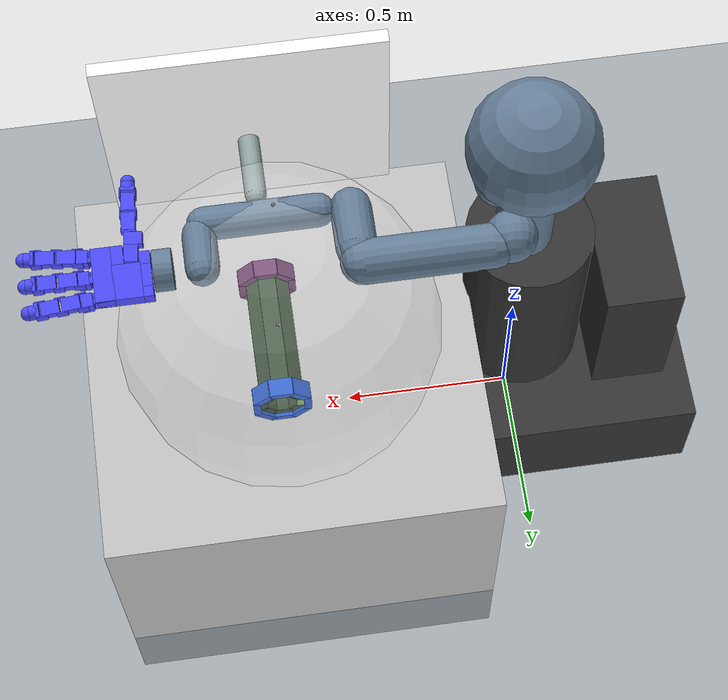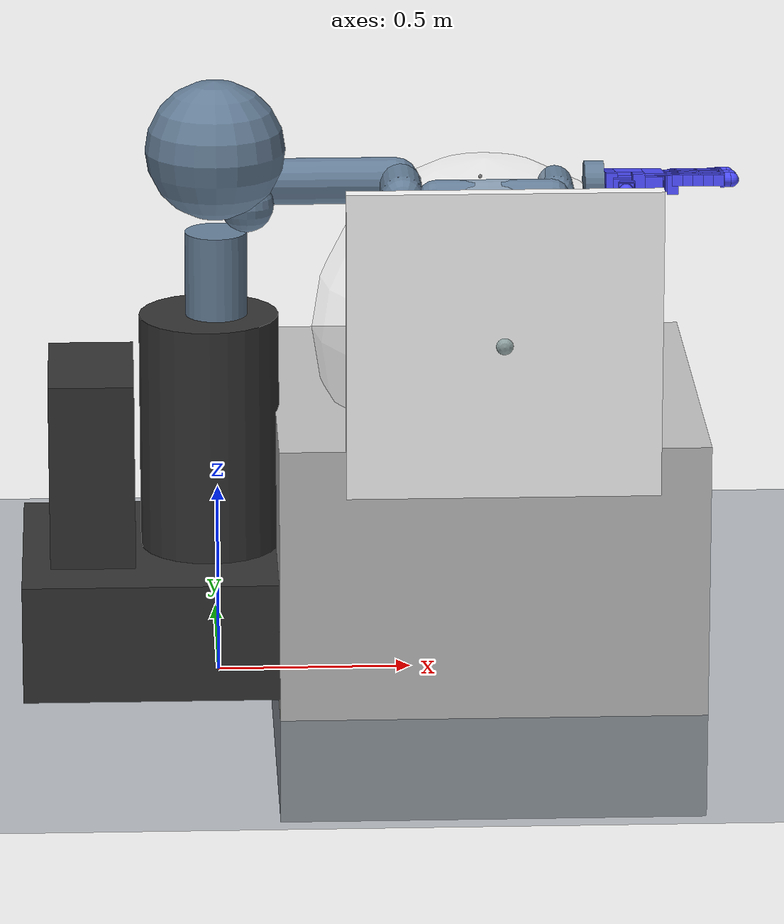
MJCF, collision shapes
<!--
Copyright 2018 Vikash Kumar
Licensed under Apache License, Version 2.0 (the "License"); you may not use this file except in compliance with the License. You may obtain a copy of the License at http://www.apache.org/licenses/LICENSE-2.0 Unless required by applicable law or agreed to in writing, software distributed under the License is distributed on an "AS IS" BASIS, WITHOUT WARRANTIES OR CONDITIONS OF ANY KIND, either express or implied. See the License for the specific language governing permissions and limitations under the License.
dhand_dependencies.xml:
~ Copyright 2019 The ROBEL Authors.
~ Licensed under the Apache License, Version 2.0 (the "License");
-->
<mujoco model='sawyer-DHand-v2.0'>
    <compiler meshdir="../../../sawyer_sim/" texturedir="../../../dsuite-scenes/scenes/"/>

    <include file="../../../sawyer_sim/assets/basic_scene.xml"/>

    <!-- Sawyer -->
    <include file="../../../sawyer_sim/assets/sawyer_dependencies.xml"/>
    <include file="../../../sawyer_sim/assets/sawyer_mocap_ee_act.xml"/>

    <!-- D'Hand -->
    <include file="../../../robel-scenes_dev/dhand/assets/dhand_dependencies.xml"/>

    <size njmax='5000' nconmax='5000'/>

    <include file='./dependencies.xml' />

    <worldbody>
        <!-- ROBOT -->
        <include file="../../base_env/assets/sawyer_dHand_chain.xml"/> <!--dHand is imported in here-->

        <!-- Sawyer physical boundary -->

        <!-- TABLE -->
        <body name="table" pos="0.7 0.15 0.72">
          <!-- Arena platform -->
          <geom type="box" size="0.55 0.55 0.5" pos="0 0 -0.5" rgba=".75 .75 .75 1"/>

          <!-- Spherical bound of object movement, due to the string attached (see below) -->
          <site name="workspace" type="sphere" size="0.45" pos="0 0 0.165" rgba="1 1 1 0.05"/>

          <!-- Axes markers -->
        </body>

        <body name="phase_indicator" pos="0.72 0.6 0.715" euler="0 0 0">
          <geom name="pi0" type="box" pos="0.15 0 0" size="0.05 0.05 0.01" contype="0" conaffinity="0" group='1' rgba="0 0 1 0"/>
          <geom name="pi1" type="box" pos="0.05 0 0" size="0.05 0.05 0.01" contype="0" conaffinity="0" group='1' rgba="0 0 1 0"/>
          <geom name="pi2" type="box" pos="-0.05 0 0" size="0.05 0.05 0.01" contype="0" conaffinity="0" group='1' rgba="0 0 1 0"/>
          <geom name="pi3" type="box" pos="-0.15 0 0" size="0.05 0.05 0.01" contype="0" conaffinity="0" group='1' rgba="0 0 1 0"/>
        </body>

        <!-- Pipe -->
        <body name="object" pos="0.72 0.15 0.8" euler="0 0 0">
          <include file="./pipe.xml"/>
          <freejoint name="r1"/>
        </body>

        <!-- Wall + Goal -->
        <body name="wall" pos="0.72 -0.4 1.">
          <geom type="box" pos="0.0 0 0.0" size="0.4 0.02 0.4" rgba='1 1 1 1' group='1' contype='1' conaffinity='1' />
          <geom type="capsule" pos="0. 0.1 0.0" euler="1.57 0 0" size="0.03 0.1" rgba='0.58 0.65 0.65 1' group='1' contype='1' conaffinity='1' />
          <site name="peg_center" type="sphere" size="0.1" pos="0 0.1 0" rgba="1 1 1 0"/>
        </body>

        <!-- Rod Target -->
        <body name="target" pos="0.72 0.15 0.8" euler="0 0 0">
          <include file="./pipe_visual.xml" />
        </body>

   </worldbody>

    <tendon>
      <spatial limited="true" range="0 0.45" width="0.005">
        <site site="workspace"/>
        <site site="rod_center"/>
      </spatial>
    </tendon>

</mujoco>

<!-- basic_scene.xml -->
<mujocoinclude>
    <asset>
        <texture name="texplane" type="2d" builtin="checker" rgb1=".2 .3 .4" rgb2=".1 0.15 0.2"
                width="512" height="512"/>
        <material name="MatGnd" reflectance="0.5" texture="texplane" texrepeat="1 1" texuniform="true"/>
    </asset>

    <worldbody>
        <light directional="false" diffuse=".8 .8 .8" specular="0.3 0.3 0.3" pos="1 -1 3" dir="-1 1 -3"/>
        <geom name="ground" pos="0 0 0" size="5 5 10" material="MatGnd" type="plane" contype="1" conaffinity="1"/>
    </worldbody>

</mujocoinclude>

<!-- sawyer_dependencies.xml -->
<mujoco>
    <compiler angle="radian"/>
    <option iterations="50" integrator="Euler" timestep="0.002" cone="elliptic" />

    <asset>
        <mesh name="pedestal" file="../sawyer_sim/meshes/sawyer/pedestal.stl" />
        <mesh name="base" file="../sawyer_sim/meshes/sawyer/base.stl" />
        <mesh name="l0" file="../sawyer_sim/meshes/sawyer/l0.stl" />
        <mesh name="head" file="../sawyer_sim/meshes/sawyer/head.stl" />
        <mesh name="l1" file="../sawyer_sim/meshes/sawyer/l1.stl" />
        <mesh name="l2" file="../sawyer_sim/meshes/sawyer/l2.stl" />
        <mesh name="l3" file="../sawyer_sim/meshes/sawyer/l3.stl" />
        <mesh name="l4" file="../sawyer_sim/meshes/sawyer/l4.stl" />
        <mesh name="l5" file="../sawyer_sim/meshes/sawyer/l5.stl" />
        <mesh name="l6" file="../sawyer_sim/meshes/sawyer/l6.stl" />
    </asset>

    <contact>
        <exclude body1="right_arm_base_link" body2="right_l0"/>
    </contact>

    <default>
        <default class='sawyer'>
            <joint limited="true" damping="10" stiffness="0" armature=".1" user="0"/>
            <geom solref="0.008 1" solimp="0.95 0.95 0.01" margin="0.001" user="0" rgba="0.2 0.2 0.2 1" group="3"/>
            <motor ctrllimited="true" ctrlrange="-100 100"/>
            <position ctrllimited="true" forcelimited="true"/>

            <default class='sawyer_col'>
                <geom rgba=".4 .5 .6 1" group="4"/>
            </default>
            <default class='sawyer_viz'>
                <geom type="mesh" contype="0" conaffinity="0" group="1" rgba="0.5 0.1 0.1 1"/>
            </default>

            <default class='sawyer_gripper'>
                <joint damping="100" armature='5'/>
                <geom friction="1 0.5 0.001" rgba=".7 .6 .55 1" contype="2" conaffinity="2" condim="6" group="1"/>
                <position kp="500" forcerange="-70 70"/>
            </default>
        </default>
    </default>

</mujoco>

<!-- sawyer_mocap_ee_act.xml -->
<mujocoinclude>
    <equality>
        <weld body1="mocap" body2="right_ee_attchment" solref="0.01 1" solimp=".25 .25 0.001"/>
    </equality>

    <worldbody>
        <body mocap="true" name="mocap" pos="1 .15 1.25">
            <geom type="mesh" contype="0" conaffinity="0" group="1" rgba="1.0 0.5 0.5 .1" mesh="l6" euler="2.95 1.57 0" pos="-0.01 .01 .017"/>
        </body>
    </worldbody>

</mujocoinclude>

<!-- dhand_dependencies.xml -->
<mujocoinclude>
  <compiler angle="radian" inertiafromgeom="auto" inertiagrouprange="4 5"/>
  <asset>
    <material name="visual_black" rgba=".2 .2 .2 1" shininess="0.8" specular=".5"/>
    <material name="visual_blue" rgba="0.1 0.4 0.9 1" shininess="0.5" specular=".5"/>
    <material name="visual_white" rgba="1 1 1 1" shininess="0.2" specular=".2"/>
    <material name="visual_chrome" rgba=".5 .5 .5 1" shininess="1" specular=".5" reflectance="1"/>
    <material name="collision_blue" rgba="0.3 0.3 1.0 0.5" shininess="0" specular="0"/>
  </asset>
  <default>
    <default class="dHand">
      <joint armature="0.001" damping="1" limited="true"/>
      <position ctrllimited="true" ctrlrange="0 1.57"/>
      <geom conaffinity="0" contype="0" group="1" material="visual_black" type="mesh"/>
      <site group="3"/>
      <default class="phys_metal">
        <geom conaffinity="1" contype="1" condim="4" margin="0.001" group="4" rgba="0.3 0.3 1.0 0.5"/>
      </default>
      <default class="ADB">
        <joint range="-.3 .3"/>
        <position kp="5" ctrlrange="-.3 .3"/>
      </default>
      <default class="MCP">
        <joint range="-.2 1.57"/>
        <position kp="5" ctrlrange="-.2 1.57"/>
      </default>
      <default class="PIP">
        <joint range="-.2 1.57"/>
        <position kp="5" ctrlrange="-.2 1.57"/>
      </default>
      <default class="DIP">
        <joint range="-.2 1.57"/>
        <position kp="5" ctrlrange="-.2 1.57"/>
      </default>
      <default class="WR">
        <joint damping="100" frictionloss="1"/>
        <position kp="1600" ctrlrange="-.2 1.57"/>
      </default>
    </default>
  </default>
  <asset>
    <mesh file="../robel_sim/dhand/meshes/bracket1.stl" name="bracket1"/>
    <mesh file="../robel_sim/dhand/meshes/bracket2.stl" name="bracket2"/>
    <mesh file="../robel_sim/dhand/meshes/finger.stl" name="finger"/>
    <mesh file="../robel_sim/dhand/meshes/H-540.stl" name="H-540"/>
    <mesh file="../robel_sim/dhand/meshes/knuckle.stl" name="knuckle"/>
    <mesh file="../robel_sim/dhand/meshes/motor.stl" name="motor"/>
    <mesh file="../robel_sim/dhand/meshes/PalmInterior.stl" name="PalmInterior"/>
    <mesh file="../robel_sim/dhand/meshes/Palmplate.stl" name="Palmplate"/>
    <mesh file="../robel_sim/dhand/meshes/topPlate.stl" name="topPlate"/>
    <mesh file="../robel_sim/dhand/meshes/thumb_bracket.stl" name="thumb_bracket"/>
    <mesh file="../robel_sim/dhand/meshes/wristbracket1.stl" name="wristbracket1"/>
    <mesh file="../robel_sim/dhand/meshes/wristbracket2.stl" name="wristbracket2"/>
    <mesh file="../robel_sim/dhand/meshes/wristmount.stl" name="wristmount"/>
  </asset>
  <actuator>
    <position joint="FF_ADB" name="FF_ADB" class="ADB"/>
    <position joint="FF_MCP" name="FF_MCP" class="MCP"/>
    <position joint="FF_PIP" name="FF_PIP" class="PIP"/>
    <position joint="FF_DIP" name="FF_DIP" class="DIP"/>
    <position joint="MF_ADB" name="MF_ADB" class="ADB"/>
    <position joint="MF_MCP" name="MF_MCP" class="MCP"/>
    <position joint="MF_PIP" name="MF_PIP" class="PIP"/>
    <position joint="MF_DIP" name="MF_DIP" class="DIP"/>
    <position joint="PF_ADB" name="PF_ADB" class="ADB"/>
    <position joint="PF_MCP" name="PF_MCP" class="MCP"/>
    <position joint="PF_PIP" name="PF_PIP" class="PIP"/>
    <position joint="PF_DIP" name="PF_DIP" class="DIP"/>
    <position joint="TF_MCP" name="TF_MCP" class="MCP"/>
    <position joint="TF_ADB" name="TF_ADB" class="ADB" ctrlrange="-2.57 .57"/>
    <position joint="TF_PIP" name="TF_PIP" class="PIP"/>
    <position joint="TF_DIP" name="TF_DIP" class="DIP"/>
  </actuator>
</mujocoinclude>

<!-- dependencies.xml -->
<mujocoinclude>
  <option timestep="0.0025"/>
  <asset>
    <material name="station_metal_grey" specular="1" shininess="1" rgba="0.5 0.5 0.5 1.0"/>
    <material name="plastic_white" specular="0.3" shininess="0" rgba="1 1 1 1"/>
    <material name="plastic_grey" specular="0.3" shininess="0" rgba="0.5 0.5 0.5 1.0"/>
    <material name="plastic_black" specular="0.3" shininess="0" rgba="0.02 0.02 0.02 1.0"/>
    <material name="plastic_transparent" specular="0.3" shininess="0" rgba="1 1 1 0.4"/>

    <mesh
      name="dodecahedron"
      vertex="1 1 1  -1 1 1  -1 -1 1
             -1 -1 -1  1 -1 1  1 -1 -1
             1 1 -1  -1 1 -1  0 0.618 1.618
             0 -0.618 1.618  0 0.618 -1.618  0 -0.618 -1.618
             1.618 0 0.618  -1.618 0 -0.618  -1.618 0 0.618
             1.618 0 -00.618  0.618 1.618 0  -0.618 1.618 0
             0.618 -1.618 0  -0.618 -1.618 0"
      scale="0.042 0.042 0.042"/>
    <mesh name="dodecahedron_top_left_face_blue" vertex="0 0.618 1.618  0 -0.618 1.618  -1 1 1  -1 -1 1  -1.618 0 0.618  0 0 0" scale="0.042 0.042 0.042"/>
    <mesh name="dodecahedron_top_right_face_yellow" vertex="0 0.618 1.618  0 -0.618 1.618  1 1 1  1 -1 1  1.618 0 0.618  0 0 0" scale="0.042 0.042 0.042"/>
    <mesh name="dodecahedron_top_front_face_red" vertex="0 -0.618 1.618  1 -1 1  -1 -1 1  0.618 -1.618 0  -0.618 -1.618 0  0 0 0" scale="0.042 0.042 0.042"/>
    <mesh name="dodecahedron_top_back_face_green" vertex="0 0.618 1.618  1 1 1  -1 1 1  0.618 1.618 0  -0.618 1.618 0  0 0 0" scale="0.042 0.042 0.042"/>
    <mesh name="dodecahedron_middle_quad_1_magenta" vertex="1 1 1  0.618 1.618 0  1.618 0 -0.618  1 1 -1  1.618 0 0.618  0 0 0" scale="0.042 0.042 0.042"/>
    <mesh name="dodecahedron_middle_quad_2_orange" vertex="-1 1 1  -0.618 1.618 0  -1.618 0 -0.618  -1 1 -1  -1.618 0 0.618  0 0 0" scale="0.042 0.042 0.042"/>
    <mesh name="dodecahedron_middle_quad_3_purple" vertex="-1 -1 1  -0.618 -1.618 0  -1.618 0 -0.618  -1 -1 -1  -1.618 0 0.618  0 0 0" scale="0.042 0.042 0.042"/>
    <mesh name="dodecahedron_middle_quad_4_white" vertex="1 -1 1  0.618 -1.618 0  1.618 0 -0.618  1 -1 -1  1.618 0 0.618  0 0 0" scale="0.042 0.042 0.042"/>
    <mesh name="dodecahedron_bottom_front_bgreen" vertex="0.618 -1.618 0  -0.618 -1.618 0  0.618 -1.618 0  1 -1 -1  -1 -1 -1  0 -0.618 -1.618  0 0 0" scale="0.042 0.042 0.042"/>
    <mesh name="dodecahedron_bottom_back_black" vertex="0.618 1.618 0  -0.618 1.618 0  0.618 1.618 0  1 1 -1  -1 1 -1  0 0.618 -1.618  0 0 0" scale="0.042 0.042 0.042"/>
    <mesh name="dodecahedron_bottom_right_babyblue" vertex="1.618 0 -0.618  1 1 -1  1 -1 -1  0 -0.618 -1.618  0 0.618 -1.618  0 0 0" scale="0.042 0.042 0.042"/>
    <mesh name="dodecahedron_bottom_left_violet" vertex="-1.618 0 -0.618  -1 1 -1  -1 -1 -1  0 -0.618 -1.618  0 0.618 -1.618  0 0 0" scale="0.042 0.042 0.042"/>
  </asset>
  <default>
    <default class="station">
      <joint limited="true" damping=".1" armature="0.001"/>
      <geom contype="1" conaffinity="1" condim="4" group="2" margin="0.0005"/>
      <site group="2"/>
      <default class="station_viz">
        <geom contype="0" conaffinity="0" type="mesh"/>
        <default class="station_viz_metal_grey">
          <geom material="station_metal_grey"/>
        </default>
        <default class="station_viz_plastic_black">
          <geom material="plastic_black"/>
        </default>
        <default class="station_viz_plastic_grey">
          <geom material="plastic_grey"/>
        </default>
        <default class="station_viz_plastic_white">
          <geom material="plastic_white"/>
        </default>
        <default class="station_viz_plastic_transparent">
          <geom material="plastic_transparent"/>
        </default>
      </default>
      <default class="station_phy">
        <geom contype="1" conaffinity="1" group="4" type="mesh" rgba="0.0 0.0 1.0 .3"/>
        <site group="4"/>
        <default class="station_phy_metal">
          <geom material="station_metal_grey"/>
        </default>
        <default class="station_phy_plastic">
          <geom material="station_metal_grey" friction=".2 0.005 0.0001"/>
        </default>
      </default>
    </default>
  </default>
</mujocoinclude>

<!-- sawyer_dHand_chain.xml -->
<mujocoinclude>
    <camera pos="0 0 3.2" name="topview" />

    <body name="base" pos="0 0 .95" childclass='sawyer'>
        <site name="basesite" pos="0 0 0" size="0.01" />
        <inertial pos="0 0 0" mass="0" diaginertia="0 0 0" />
        <body name="controller_box" pos="0 0 0">
            <inertial pos="-0.325 0 -0.38" mass="46.64" diaginertia="1.71363 1.27988 0.809981" />
            <geom size="0.11 0.2 0.265" pos="-0.325 0 -0.38" type="box" />
        </body>
        <body name="pedestal_feet" pos="0 0 0">
            <inertial pos="-0.1225 0 -0.758" mass="167.09" diaginertia="8.16095 9.59375 15.0785" />
            <geom size="0.385 0.35 0.155" pos="-0.1225 0 -0.758" type="box"  contype="0" conaffinity="0" />
        </body>
        <body name="torso" pos="0 0 0">
            <inertial pos="0 0 0" mass="0.0001" diaginertia="1e-08 1e-08 1e-08" />
            <geom size="0.05 0.05 0.05" type="box" contype="0" conaffinity="0" group="1"  />
        </body>
        <body name="pedestal" pos="0 0 0">
            <inertial pos="0 0 0" quat="0.659267 -0.259505 -0.260945 0.655692" mass="60.864" diaginertia="6.0869 5.81635 4.20915" />
            <geom pos="0.26 0.345 -0.91488" quat="0.5 0.5 -0.5 -0.5" type="mesh" contype="0" conaffinity="0" group="1"  mesh="pedestal" />
            <geom size="0.18 0.31" pos="-0.02 0 -0.29" type="cylinder" rgba="0.2 0.2 0.2 0" />
        </body>
        <body name="right_arm_base_link" pos="0 0 0">
            <inertial pos="-0.0006241 -2.8025e-05 0.065404" quat="-0.209285 0.674441 0.227335 0.670558" mass="2.0687" diaginertia="0.00740351 0.00681776 0.00672942" />
            <geom name='right_arm_base_link0' class="sawyer_viz" mesh="base" />
            <geom name='right_arm_base_link1' size="0.08 0.12" pos="0 0 0.12" type="cylinder" class="sawyer_col" />
            <body name="right_l0" pos="0 0 0.08">
                <inertial pos="0.024366 0.010969 0.14363" quat="0.894823 0.00899958 -0.170275 0.412573" mass="5.3213" diaginertia="0.0651588 0.0510944 0.0186218" />
                <joint name="right_j0" pos="0 0 0" axis="0 0 1" range="-3.0503 3.0503" damping="50"/>
                <geom name='right_l0_g0' class="sawyer_viz" mesh="l0" />
                <geom name='right_l0_g1' size="0.07" pos="0.08 0 0.23" class="sawyer_col" />
                <body name="head" pos="0 0 0.2965">
                    <inertial pos="0.0053207 -2.6549e-05 0.1021" quat="0.999993 7.08405e-05 -0.00359857 -0.000626247" mass="1.5795" diaginertia="0.0118334 0.00827089 0.00496574" />
                    <geom name='head_g0' class="sawyer_viz" mesh="head" />
                    <geom name='head_g1' size="0.18" pos="0 0 0.08" class="sawyer_col" />
                    <body name="screen" pos="0.03 0 0.105" quat="0.5 0.5 0.5 0.5">
                        <geom size="0.12 0.07 0.001" type="box" group="1"/>
                    </body>
                    <site name="head_camera" size="0.01" pos="0.0228027 0 0.216572" quat="0.342813 -0.618449 0.618449 -0.342813"/>
                </body>
                <site name="right_torso_itb" pos="-0.055 0 0.22" quat="0.707107 0 -0.707107 0"/>
                <body name="right_l1" pos="0.081 0.05 0.237" quat="0.5 -0.5 0.5 0.5">
                    <inertial pos="-0.0030849 -0.026811 0.092521" quat="0.424888 0.891987 0.132364 -0.0794296" mass="4.505" diaginertia="0.0224339 0.0221624 0.0097097" />
                    <joint name="right_j1" pos="0 0 0" axis="0 0 1" range="-3.8 1.25" damping="50"/>
                    <geom class="sawyer_viz" mesh="l1" />
                    <geom size="0.07" pos="0 0 0.1225" class="sawyer_col" />
                    <body name="right_l2" pos="0 -0.14 0.1425" quat="0.707107 0.707107 0 0">
                        <inertial pos="-0.00016044 -0.014967 0.13582" quat="0.707831 -0.0524761 0.0516007 0.702537" mass="1.745" diaginertia="0.0257928 0.025506 0.00292515" />
                        <joint name="right_j2" pos="0 0 0" axis="0 0 1" range="-3.0426 3.0426" damping="25"/>
                        <geom class="sawyer_viz" mesh="l2" />
                        <geom size="0.06 0.17" pos="0 0 0.08" type="capsule" class="sawyer_col" />
                        <body name="right_l3" pos="0 -0.042 0.26" quat="0.707107 -0.707107 0 0">
                            <site name="armsite" pos="0 0 0" size="0.01" />
                            <inertial pos="-0.0048135 -0.0281 -0.084154" quat="0.902999 0.385391 -0.0880901 0.168247" mass="2.5097" diaginertia="0.0102404 0.0096997 0.00369622" />
                            <joint name="right_j3" pos="0 0 0" axis="0 0 1" range="-3.0439 3.0439" damping="25"/>
                            <geom class="sawyer_viz" mesh="l3" />
                            <geom type="capsule" size="0.055 0.06" pos="0 0 -0.06" class="sawyer_col" />
                            <body name="right_l4" pos="0 -0.125 -0.1265" quat="0.707107 0.707107 0 0">
                                <joint name="right_j4" pos="0 0 0" axis="0 0 1" range="-2.9761 2.9761" />
                                <geom class="sawyer_viz" mesh="l4" />
                                <geom size="0.045 0.15" pos="0 0 0.11" type="capsule" class="sawyer_col" />
                                <site name="right_arm_itb" pos="-0.055 0 0.075" quat="0.707107 0 -0.707107 0"/>
                                <body name="right_l5" pos="0 0.031 0.275" quat="0.707107 -0.707107 0 0">
                                    <joint name="right_j5" pos="0 0 0" axis="0 0 1" range="-2.9761 2.9761"/>
                                    <geom class="sawyer_viz" mesh="l5" />
                                    <geom type="capsule" size="0.045 0.05" pos="0 0 0.05" class="sawyer_col" />
                                    <site name="right_hand_camera" pos="0.039552 -0.033 0.0695" quat="0.707107 0 0.707107 0"/>
                                    <site name="right_wrist" pos="0 0 0.10541" quat="0.707107 0.707107 0 0"/>
                                    <body name="right_l6" pos="0 -0.11 0.1053" quat="0.0616248 0.06163 -0.704416 0.704416">
                                        <joint name="right_j6" pos="0 0 0" axis="0 0 1" range="-4.7124 4.7124"/>
                                        <geom class="sawyer_viz" mesh="l6"/>
                                        <geom size="0.055 0.025" pos="0 0.015 -0.01" type="cylinder" class="sawyer_col" />
                                        <body name="right_ee_attchment" pos="0 0 0.0245" quat="0.707107 0 0 0.707107" childclass="sawyer_gripper">
                                            <site name="endeffector0" pos="0 0 0" size="0.01" />

<!--  ================= BEGIN GRIPPER ================= /-->

        <body name="palm" pos="0 0 0.01" childclass="dHand">
          <geom euler="1.57 0 1.57" mesh="motor" pos="0.012 0 0.112"/>
          <geom euler="1.57 0 1.66" mesh="motor" pos="-0.042 0 0.111"/>
          <geom euler="1.57 0 1.484" mesh="motor" pos="0.066 0 0.111"/>
          <geom material="visual_white" euler="1.57 0 1.57" mesh="PalmInterior" pos="0.011 0 0.053"/>
          <geom euler="1.57 0 1.57" mesh="Palmplate" pos="0.013 0.025 0.061" material="visual_chrome"/>
          <geom euler="1.57 0 1.57" mesh="Palmplate" pos="0.013 -0.025 0.061"/>
          <geom class="phys_metal" pos="-0.011 0 0.048" size="0.047 0.027 0.037" type="box" mass=".300"/>
          <geom class="phys_metal" pos="-0.044 0 -.002" size="0.014 0.027 0.013" type="box" mass=".150"/>
          <geom class="phys_metal" pos="0.012 0 0.109" size="0.015 0.017 0.024" type="box" mass=".086"/>
          <geom class="phys_metal" euler="0 0.087 0" pos="0.066 0 0.108" size="0.015 0.018 0.024" type="box" mass=".086"/>
          <geom class="phys_metal" euler="0 -0.087 0" pos="-0.042 0 0.108" size="0.015 0.018 0.024" type="box" mass=".086"/>
          <geom class="phys_metal" pos="0.06 0 0.068" size="0.026 0.027 0.016" type="box" mass=".150"/>
          <geom class="phys_metal" pos="0 -0.0248 -.002" size="0.03 0.002 0.013" type="box" mass=".30"/>
          <geom class="phys_metal" pos="0 0.0248 -.002" size="0.03 0.002 0.013" type="box" mass=".30"/>
          <geom class="phys_metal" pos="0.014 -0.025 0.109" size="0.072 0.002 0.026" type="box" mass=".50"/>
          <geom class="phys_metal" pos="0.014 0.025 0.109" size="0.072 0.002 0.026" type="box" mass=".50"/>
          <geom class="phys_metal" pos="0.047 0 -.001" size="0.017 0.027 0.0145" type="box" mass=".79"/>
          <site name="grasp" pos="0 -.125 .1" type="sphere" size="0.020"/>
          <site name="grasp_right" pos="0.165 -.125 .1" type="sphere" size="0.020"  rgba=".5 .65 .5 1"/>
          <site name="grasp_left" pos="-.165 -.125 .1" type="sphere" size="0.020" rgba=".8 .95 .8 1"/>

          <!-- INDEX/FIRST FINGER -->
          <body euler="0 0.087 0" name="FF_metacarpel" pos="0.067 0 0.12">
            <joint axis="0 1 0" name="FF_ADB" class="ADB"/>
            <geom euler="-1.57 3.14 -1.57" mesh="knuckle"/>
            <geom euler="1.57 -1.57 0" mesh="motor" pos="0 0 0.037"/>
            <geom class="phys_metal" pos="0 0 0.021" size="0.015 0.021 0.002" type="box" mass=".003"/>
            <geom class="phys_metal" pos="0 0.02 0.01" size="0.015 0.001 0.014" type="box" mass=".001"/>
            <geom class="phys_metal" pos="0 -0.02 0.01" size="0.015 0.001 0.014" type="box" mass=".001"/>
            <geom class="phys_metal" pos="0 0.003 0.037" size="0.018 0.024 0.015" type="box" mass=".086"/>
            <body name="FF_proximal" pos="0 -0.009 0.037">
              <joint axis="1 0 0" name="FF_MCP" class="MCP"/>
              <geom euler="0 -1.57 0" mesh="bracket2" pos="-0.018 0 0.012"/>
              <geom euler="0 1.57 3.14" mesh="bracket2" pos="0.018 0 0.012"/>
              <geom euler="0 -1.57 0" mesh="motor" pos="0 0 0.0445"/>
              <geom class="phys_metal" pos="0.02 0 0.012" size="0.0015 0.015 0.014" type="box" mass=".003"/>
              <geom class="phys_metal" pos="-0.02 0 0.012" size="0.0015 0.015 0.014" type="box" mass=".003"/>
              <geom class="phys_metal" pos="0 0 0.041" size="0.018 0.015 0.024" type="box" mass=".086"/>
              <body name="FF_middle" pos="0 0 0.054">
                <joint axis="1 0 0" name="FF_PIP" class="PIP"/>
                <geom euler="0 1.57 3.14" mesh="bracket2" pos="0.018 0 0.011"/>
                <geom euler="0 -1.57 0" mesh="bracket2" pos="-0.018 0 0.011"/>
                <geom euler="0 -1.57 0" mesh="motor" pos="0 0 0.0436"/>
                <geom class="phys_metal" pos="0.02 0 0.011" size="0.0015 0.015 0.014" type="box" mass=".003"/>
                <geom class="phys_metal" pos="-0.02 0 0.011" size="0.0015 0.015 0.014" type="box" mass=".003"/>
                <geom class="phys_metal" pos="0 0 0.041" size="0.018 0.015 0.024" type="box" mass=".086"/>
                <body name="FF_distal" pos="0 0 0.052">
                  <joint axis="1 0 0" name="FF_DIP" class="DIP"/>
                  <geom euler="0 -1.57 0" mesh="bracket2" pos="-0.018 0 0.012"/>
                  <geom euler="0 1.57 3.14" mesh="bracket2" pos="0.018 0 0.012"/>
                  <geom material="visual_blue" euler="1.57 0 1.57" mesh="finger" pos="0 0 0.04"/>
                  <geom class="phys_metal" pos="-0.02 0 0.012" size="0.0015 0.015 0.014" type="box" mass=".003"/>
                  <geom class="phys_metal" pos="0.02 0 0.012" size="0.0015 0.015 0.014" type="box" mass=".003"/>
                  <geom class="phys_metal" pos="0 0 0.045" size="0.019" type="sphere" mass=".01"/>
                  <geom class="phys_metal" pos="0 0 0.033" size="0.019 .01" type="cylinder" mass=".007"/>
                  <geom class="phys_metal" pos="0 0 0.022" size="0.019 .018 .005" type="box" mass=".004"/>
                  <site name="FFtip" type="sphere" pos="0 0 0.045" size="0.01" rgba="1 .3 .3 1"/>
                </body>
              </body>
            </body>
          </body>
          <!-- MIDDLE FINGER -->
          <body name="MF_metacarpel" pos="0.012 0 0.121">
            <joint axis="0 1 0" name="MF_ADB" class="ADB"/>
            <geom euler="-1.57 3.14 -1.57" mesh="knuckle"/>
            <geom euler="1.57 -1.57 0" mesh="motor" pos="0 0 0.037"/>
            <geom class="phys_metal" pos="0 0 0.021" size="0.015 0.021 0.002" type="box" mass=".003"/>
            <geom class="phys_metal" pos="0 0.02 0.01" size="0.015 0.001 0.014" type="box" mass=".001"/>
            <geom class="phys_metal" pos="0 -0.02 0.01" size="0.015 0.001 0.014" type="box" mass=".001"/>
            <geom class="phys_metal" pos="0 0.003 0.037" size="0.018 0.024 0.015" type="box" mass=".086"/>
            <body name="MF_proximal" pos="0 -0.009 0.037">
              <joint axis="1 0 0" name="MF_MCP" class="MCP"/>
              <geom euler="0 -1.57 0" mesh="bracket2" pos="-0.018 0 0.012"/>
              <geom euler="0 1.57 3.14" mesh="bracket2" pos="0.018 0 0.012"/>
              <geom euler="0 -1.57 0" mesh="motor" pos="0 0 0.0445"/>
              <geom class="phys_metal" pos="0.02 0 0.012" size="0.0015 0.015 0.014" type="box" mass=".003"/>
              <geom class="phys_metal" pos="-0.02 0 0.012" size="0.0015 0.015 0.014" type="box" mass=".003"/>
              <geom class="phys_metal" pos="0 0 0.041" size="0.018 0.015 0.024" type="box" mass=".086"/>
              <body name="MF_middle" pos="0 0 0.054">
                <joint axis="1 0 0" name="MF_PIP" class="PIP"/>
                <geom euler="0 1.57 3.14" mesh="bracket2" pos="0.018 0 0.011"/>
                <geom euler="0 -1.57 0" mesh="bracket2" pos="-0.018 0 0.011"/>
                <geom euler="0 -1.57 0" mesh="motor" pos="0 0 0.0436"/>
                <geom class="phys_metal" pos="0.02 0 0.011" size="0.0015 0.015 0.014" type="box" mass=".003"/>
                <geom class="phys_metal" pos="-0.02 0 0.011" size="0.0015 0.015 0.014" type="box" mass=".003"/>
                <geom class="phys_metal" pos="0 0 0.041" size="0.018 0.015 0.024" type="box" mass=".086"/>
                <body name="MF_distal" pos="0 0 0.052">
                  <joint axis="1 0 0" name="MF_DIP" class="DIP"/>
                  <geom euler="0 -1.57 0" mesh="bracket2" pos="-0.018 0 0.012"/>
                  <geom euler="0 1.57 3.14" mesh="bracket2" pos="0.018 0 0.012"/>
                  <geom material="visual_blue" euler="1.57 0 1.57" mesh="finger" pos="0 0 0.04"/>
                  <geom class="phys_metal" pos="-0.02 0 0.012" size="0.0015 0.015 0.014" type="box" mass=".003"/>
                  <geom class="phys_metal" pos="0.02 0 0.012" size="0.0015 0.015 0.014" type="box" mass=".003"/>
                  <geom class="phys_metal" pos="0 0 0.045" size="0.019" type="sphere" mass=".01"/>
                  <geom class="phys_metal" pos="0 0 0.033" size="0.019 .01" type="cylinder" mass=".007"/>
                  <geom class="phys_metal" pos="0 0 0.022" size="0.019 .018 .005" type="box" mass=".004"/>
                  <site name="MFtip" type="sphere" pos="0 0 0.045" size="0.01" rgba=".3 1 .3 1"/>
                </body>
              </body>
            </body>
          </body>
          <!-- PINKY FINGER -->
          <body euler="0 -0.087 0" name="PF_metacarpel" pos="-0.043 0 0.12">
            <joint axis="0 1 0" name="PF_ADB" class="ADB"/>
            <geom euler="-1.57 3.14 -1.57" mesh="knuckle"/>
            <geom euler="1.57 -1.57 0" mesh="motor" pos="0 0 0.037"/>
            <geom class="phys_metal" pos="0 0 0.021" size="0.015 0.021 0.002" type="box" mass=".003"/>
            <geom class="phys_metal" pos="0 0.02 0.01" size="0.015 0.001 0.014" type="box" mass=".001"/>
            <geom class="phys_metal" pos="0 -0.02 0.01" size="0.015 0.001 0.014" type="box" mass=".001"/>
            <geom class="phys_metal" pos="0 0.003 0.037" size="0.018 0.024 0.015" type="box" mass=".086"/>
            <body name="PF_proximal" pos="0 -0.009 0.037">
              <joint axis="1 0 0" name="PF_MCP" class="MCP"/>
              <geom euler="0 -1.57 0" mesh="bracket2" pos="-0.018 0 0.012"/>
              <geom euler="0 1.57 3.14" mesh="bracket2" pos="0.018 0 0.012"/>
              <geom euler="0 -1.57 0" mesh="motor" pos="0 0 0.0445"/>
              <geom class="phys_metal" pos="0.02 0 0.012" size="0.0015 0.015 0.014" type="box" mass=".003"/>
              <geom class="phys_metal" pos="-0.02 0 0.012" size="0.0015 0.015 0.014" type="box" mass=".003"/>
              <geom class="phys_metal" pos="0 0 0.041" size="0.018 0.015 0.024" type="box" mass=".086"/>
              <body name="PF_middle" pos="0 0 0.054">
                <joint axis="1 0 0" name="PF_PIP" class="PIP"/>
                <geom euler="0 1.57 3.14" mesh="bracket2" pos="0.018 0 0.011"/>
                <geom euler="0 -1.57 0" mesh="bracket2" pos="-0.018 0 0.011"/>
                <geom euler="0 -1.57 0" mesh="motor" pos="0 0 0.0436"/>
                <geom class="phys_metal" pos="0.02 0 0.012" size="0.0015 0.015 0.014" type="box" mass=".003"/>
                <geom class="phys_metal" pos="-0.02 0 0.012" size="0.0015 0.015 0.014" type="box" mass=".003"/>
                <geom class="phys_metal" pos="0 0 0.041" size="0.018 0.015 0.024" type="box" mass=".086"/>
                <body name="PF_distal" pos="0 0 0.052">
                  <joint axis="1 0 0" name="PF_DIP" class="DIP"/>
                  <geom euler="0 -1.57 0" mesh="bracket2" pos="-0.018 0 0.012"/>
                  <geom euler="0 1.57 3.14" mesh="bracket2" pos="0.018 0 0.012"/>
                  <geom material="visual_blue" euler="1.57 0 1.57" mesh="finger" pos="0 0 0.04"/>
                  <geom class="phys_metal" pos="-0.02 0 0.011" size="0.0015 0.015 0.014" type="box" mass=".003"/>
                  <geom class="phys_metal" pos="0.02 0 0.011" size="0.0015 0.015 0.014" type="box" mass=".003"/>
                  <geom class="phys_metal" pos="0 0 0.045" size="0.019" type="sphere" mass=".01"/>
                  <geom class="phys_metal" pos="0 0 0.033" size="0.019 .01" type="cylinder" mass=".007"/>
                  <geom class="phys_metal" pos="0 0 0.022" size="0.019 .018 .005" type="box" mass=".004"/>
                  <site name="PFtip" type="sphere" pos="0 0 0.045" size="0.01" rgba=".3 .3 1 1"/>
                </body>
              </body>
            </body>
          </body>
          <!-- THUMB -->
          <body euler="0 1.658 0" name="TF" pos="0.055 0 0.04">
            <joint axis="1 0 0" name="TF_MCP" class="MCP"/>
            <geom euler="0 0 3.14" mesh="motor" pos="0.009 0 0.052"/>
            <geom euler="-3.14 -1.57 0" mesh="motor" pos="0.006 0 0.009"/>
            <geom material="visual_chrome" euler="1.57 0 1.57" mesh="thumb_bracket" pos="0.015 0.016 0.031"/>
            <geom material="visual_chrome" euler="1.57 0 1.57" mesh="thumb_bracket" pos="0.015 -0.016 0.031"/>
            <geom class="phys_metal" pos="0.006 0 0.012" size="0.018 0.018 0.024" type="box" mass=".092"/>
            <geom class="phys_metal" pos="0.012 0 0.052" size="0.024 0.018 0.017" type="box" mass=".092"/>
            <body name="TF_metacarpel" pos="0 0 0.072">
              <joint axis="0 0 1" name="TF_ADB" range="-1.57 0"/>
              <geom euler="1.57 0 1.57" mesh="bracket1" pos="0 0 0.0015"/>
              <geom euler="0 -1.57 0" mesh="motor" pos="0 0 0.031"/>
              <geom class="phys_metal" pos="0 0 0.028" size="0.018 0.015 0.024" type="box"/>
              <geom class="phys_metal" pos="0 0 0.005" size="0.019 0.014 0.006" type="box"/>
              <body name="TF_middle" pos="0 0 0.0405">
                <joint axis="1 0 0" name="TF_PIP" class="PIP"/>
                <geom euler="0 -1.57 0" mesh="bracket2" pos="-0.018 0 0.011"/>
                <geom euler="3.14 1.57 0" mesh="bracket2" pos="0.017 0 0.011"/>
                <geom euler="0 -1.57 0" mesh="motor" pos="0 0 0.044"/>
                <geom class="phys_metal" pos="-0.02 0 0.011" size="0.0015 0.015 0.014" type="box" mass=".003"/>
                <geom class="phys_metal" pos="0.02 0 0.011" size="0.0015 0.015 0.014" type="box" mass=".003"/>
                <geom class="phys_metal" pos="0 0 0.041" size="0.018 0.015 0.024" type="box" mass=".086"/>
                <body name="TF_distal" pos="0 0 0.0535">
                  <joint axis="1 0 0" name="TF_DIP" class="DIP"/>
                  <geom euler="3.14 1.57 0" mesh="bracket2" pos="0.017 0 0.011"/>
                  <geom euler="0 -1.57 0" mesh="bracket2" pos="-0.018 0 0.011"/>
                  <geom material="visual_blue" euler="1.57 0 1.57" mesh="finger" pos="0 0 0.04"/>
                  <geom class="phys_metal" pos="-0.02 0 0.011" size="0.0015 0.015 0.014" type="box" mass=".003"/>
                  <geom class="phys_metal" pos="0.02 0 0.011" size="0.0015 0.015 0.014" type="box" mass=".003"/>
                  <geom class="phys_metal" pos="0 0 0.045" size="0.019" type="sphere" mass=".01"/>
                  <geom class="phys_metal" pos="0 0 0.033" size="0.019 .01" type="cylinder" mass=".007"/>
                  <geom class="phys_metal" pos="0 0 0.022" size="0.019 .018 .005" type="box" mass=".004"/>
                  <site name="TFtip" type="sphere" pos="0 0 0.045" size="0.01" rgba="1 1 .3 1"/>
                </body>
              </body>
            </body>
          </body>
        </body>

<!--  ================= END GRIPPER ================= /-->

                                        </body>
                                    </body>
                                </body>
                            </body>
                        </body>
                    </body>
                </body>
            </body>
        </body>
    </body>

</mujocoinclude>

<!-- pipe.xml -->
<mujocoinclude name='pipe'>
  <body name="pipe" pos="0 0 0" euler="1.57 0 0">
    <!-- visuals -->

    <geom type="box" pos="0.05 0 0.00" size="0.01 0.025 0.2" euler="0 0 0" rgba=".21 .3 .2 1" group='1' contype="0" conaffinity="0" />
    <geom type="box" pos="-.05 0 0.00" size="0.01 0.025 0.2" euler="0 0 0" rgba=".56 .76 .47 1" group='1' contype="0" conaffinity="0"/>
    <geom type="box" pos="0 0.05 0.00" size="0.01 0.025 0.2" euler="0 0 1.57" rgba=".21 .3 .2 1" group='1' contype="0" conaffinity="0" />
    <geom type="box" pos="0 -.05 0.00" size="0.01 0.025 0.2" euler="0 0 1.57" rgba=".21 .3 .2 1" group='1' contype="0" conaffinity="0" />
    <geom type="box" pos="0.0354 0.0354 0.00" size="0.01 0.025 0.2" euler="0 0 0.785" rgba=".21 .3 .2 1" group='1' contype="0" conaffinity="0" />
    <geom type="box" pos="-.0354 -.0354 0.00" size="0.01 0.025 0.2" euler="0 0 0.785" rgba=".21 .3 .2 1" group='1' contype="0" conaffinity="0" />
    <geom type="box" pos="-.0354 .0354 0.00" size="0.01 0.025 0.2" euler="0 0 -.785" rgba=".21 .3 .2 1" group='1' contype="0" conaffinity="0" />
    <geom type="box" pos="0.0354 -.0354 0.00" size="0.01 0.025 0.2" euler="0 0 -.785" rgba=".21 .3 .2 1" group='1' contype="0" conaffinity="0"  />

    <geom type="box" pos="0.07 0 0.185" size="0.01 0.032 0.025" euler="0 0 0" rgba=".4 .2 .4 1" group='1' contype="0" conaffinity="0"  />
    <geom type="box" pos="-.07 0 0.185" size="0.01 0.032 0.025" euler="0 0 0" rgba=".4 .2 .4 1" group='1' contype="0" conaffinity="0"  />
    <geom type="box" pos="0 0.07 0.185" size="0.01 0.032 0.025" euler="0 0 1.57" rgba=".4 .2 .4 1" group='1' contype="0" conaffinity="0"  />
    <geom type="box" pos="0 -.07 0.185" size="0.01 0.032 0.025" euler="0 0 1.57" rgba=".4 .2 .4 1" group='1' contype="0" conaffinity="0"  />
    <geom type="box" pos="0.0495 0.0495 0.185" size="0.01 0.032 0.025" euler="0 0 0.785" rgba=".4 .2 .4 1" group='1' contype="0" conaffinity="0"  />
    <geom type="box" pos="-.0495 -.0495 0.185" size="0.01 0.032 0.025" euler="0 0 0.785" rgba=".4 .2 .4 1" group='1' contype="0" conaffinity="0"  />
    <geom type="box" pos="-.0495 .0495 0.185" size="0.01 0.032 0.025" euler="0 0 -.785" rgba=".4 .2 .4 1" group='1' contype="0" conaffinity="0"  />
    <geom type="box" pos="0.0495 -.0495 0.185" size="0.01 0.032 0.025" euler="0 0 -.785" rgba=".4 .2 .4 1" group='1' contype="0" conaffinity="0"  />

    <geom type="box" pos="0.07 0 -0.185" size="0.01 0.032 0.025" euler="0 0 0" rgba='0.14 0.36 0.86 1' group='1' contype="0" conaffinity="0"  />
    <geom type="box" pos="-.07 0 -0.185" size="0.01 0.032 0.025" euler="0 0 0" rgba='0.14 0.36 0.86 1' group='1' contype="0" conaffinity="0"  />
    <geom type="box" pos="0 0.07 -0.185" size="0.01 0.032 0.025" euler="0 0 1.57" rgba='0.14 0.36 0.86 1' group='1' contype="0" conaffinity="0"  />
    <geom type="box" pos="0 -.07 -0.185" size="0.01 0.032 0.025" euler="0 0 1.57" rgba='0.14 0.36 0.86 1' group='1' contype="0" conaffinity="0"  />
    <geom type="box" pos="0.0495 0.0495 -0.185" size="0.01 0.032 0.025" euler="0 0 0.785" rgba='0.14 0.36 0.86 1' group='1' contype="0" conaffinity="0"  />
    <geom type="box" pos="-.0495 -.0495 -0.185" size="0.01 0.032 0.025" euler="0 0 0.785" rgba='0.14 0.36 0.86 1' group='1' contype="0" conaffinity="0"  />
    <geom type="box" pos="-.0495 .0495 -0.185" size="0.01 0.032 0.025" euler="0 0 -.785" rgba="0.14 0.36 0.86 1" group='1' contype="0" conaffinity="0"  />
    <geom type="box" pos="0.0495 -.0495 -0.185" size="0.01 0.032 0.025" euler="0 0 -.785" rgba="0.14 0.36 0.86 1" group='1' contype="0" conaffinity="0"  />

    <!-- collisions -->
    <geom type="box" pos="0.05 0 0.00" size="0.01 0.025 0.2" euler="0 0 0" rgba=".21 .3 .2 1" group='4' contype="1" conaffinity="0" mass="0.050" />
    <geom type="box" pos="-.05 0 0.00" size="0.01 0.025 0.2" euler="0 0 0" rgba=".21 .3 .2 1" group='4' contype="1" conaffinity="0" mass="0.050"  />
    <geom type="box" pos="0 0.05 0.00" size="0.01 0.025 0.2" euler="0 0 1.57" rgba=".21 .3 .2 1" group='4' contype="1" conaffinity="0" mass="0.050"  />
    <geom type="box" pos="0 -.05 0.00" size="0.01 0.025 0.2" euler="0 0 1.57" rgba=".21 .3 .2 1" group='4' contype="1" conaffinity="0" mass="0.050"  />
    <geom type="box" pos="0.0354 0.0354 0.00" size="0.01 0.025 0.2" euler="0 0 0.785" rgba=".21 .3 .2 1" group='4' contype="1" conaffinity="0" mass="0.050" />
    <geom type="box" pos="-.0354 -.0354 0.00" size="0.01 0.025 0.2" euler="0 0 0.785" rgba=".21 .3 .2 1" group='4' contype="1" conaffinity="0" mass="0.050" />
    <geom type="box" pos="-.0354 .0354 0.00" size="0.01 0.025 0.2" euler="0 0 -.785" rgba=".21 .3 .2 1" group='4' contype="1" conaffinity="0" mass="0.050" />
    <geom type="box" pos="0.0354 -.0354 0.00" size="0.01 0.025 0.2" euler="0 0 -.785" rgba=".21 .3 .2 1" group='4' contype="1" conaffinity="0" mass="0.050"  />

    <!-- sites -->
    <site name="rod_center" type="sphere" size="0.0405" pos="0 0 0.05" rgba=".4 .4 .4 0.25" />
    <site name="rod_left" type="sphere" size="0.041" pos="0 0 0.165" rgba="0 0 0 0"/>
    <site name="rod_right" type="sphere" size="0.041" pos="0 0 -0.165" rgba="1 1 1 0"/>
    <site name="rod_normal" type="sphere" size="0.041" pos="1.0 0 0" rgba="1 1 1 0"/>
    <site name="rod_parallel" type="sphere" size="0.041" pos="0 0 1.0" rgba="1 1 1 0"/>
  </body>
</mujocoinclude>

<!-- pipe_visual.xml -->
<mujocoinclude name='rod_visual'>
    <body name="pipe_visual" pos="0 0 0" euler="1.57 0 0">

      <geom type="capsule" size=".04 .165" rgba="0 1 0 .01" group="1" contype="0" conaffinity="0"/>
      <body pos="0 0 0." euler='0 0 0.785'>
        <geom type="box" pos="0.05 0 0.02" size="0.01 0.025 0.2" rgba='0.16 0.5 0.73 0.1' group='1' contype='0' conaffinity='0' />
      </body>

      <site name="target_center" type="sphere" size="0.04" pos="0 0 0" rgba="0 1 0 .05"/>
      <site name="target_left" type="sphere" size="0.04" pos="0 0 0.165" rgba="0 0 0 .05"/>
      <site name="target_right" type="sphere" size="0.04" pos="0 0 -0.165" rgba="1 1 1 .05"/>
      <site name="target_normal" type="sphere" size="0.04" pos="1 0 0" rgba="1 1 1 0"/>
      <site name="target_parallel" type="sphere" size="0.04" pos="0 0 1" rgba="1 1 1 0"/>

    </body>
</mujocoinclude>
